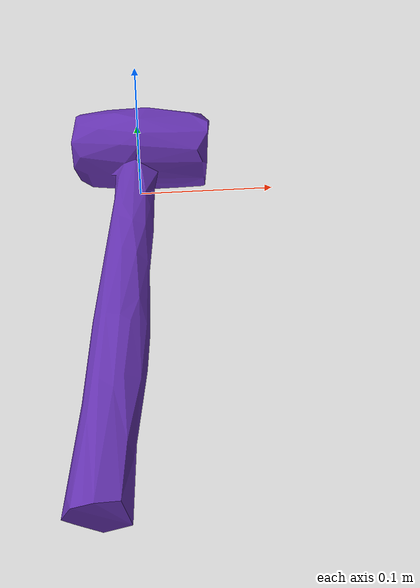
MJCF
<mujoco model="top_watertight_tiny">

  <asset>
    <mesh file="top_watertight_tiny.obj"/>
    <mesh file="top_watertight_tiny_collision_0.obj"/>
    <mesh file="top_watertight_tiny_collision_1.obj"/>
  </asset>
  <worldbody>
    <body name="top_watertight_tiny">
      <freejoint/>
      <geom solimp="0.90 0.95 0.001" solref="0.02 1.0" density="100" friction="0.95 0.4 0.3" rgba="0.4 0.2 0.7 1" mesh="top_watertight_tiny" group="2" type="mesh" contype="0" conaffinity="0"/>
      <geom solimp="0.90 0.95 0.001" solref="0.02 1.0" density="100" friction="0.95 0.4 0.3" mesh="top_watertight_tiny_collision_0" rgba="0.8735573577667012 0.17643187808335292 0.09497512353050541 1" group="3" type="mesh"/>
      <geom solimp="0.90 0.95 0.001" solref="0.02 1.0" density="100" friction="0.95 0.4 0.3" mesh="top_watertight_tiny_collision_1" rgba="0.7574416837037367 0.24836588018049077 0.06224827017780998 1" group="3" type="mesh"/>
    </body>
  </worldbody>
</mujoco>
